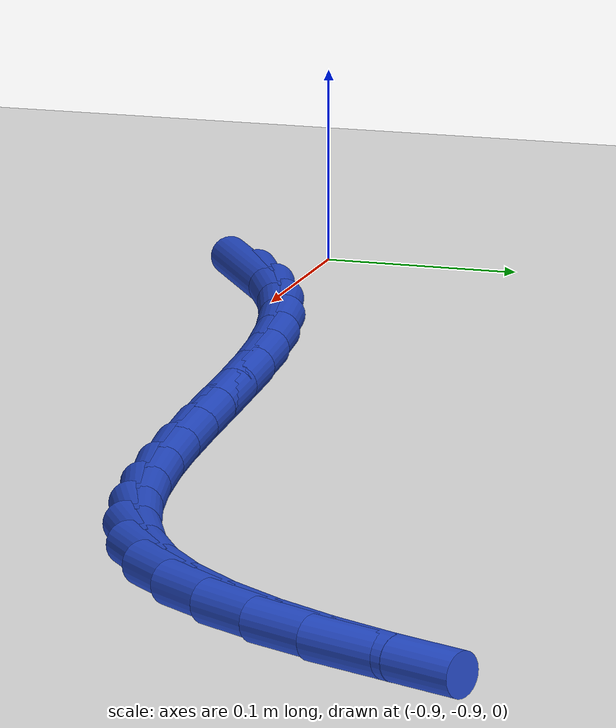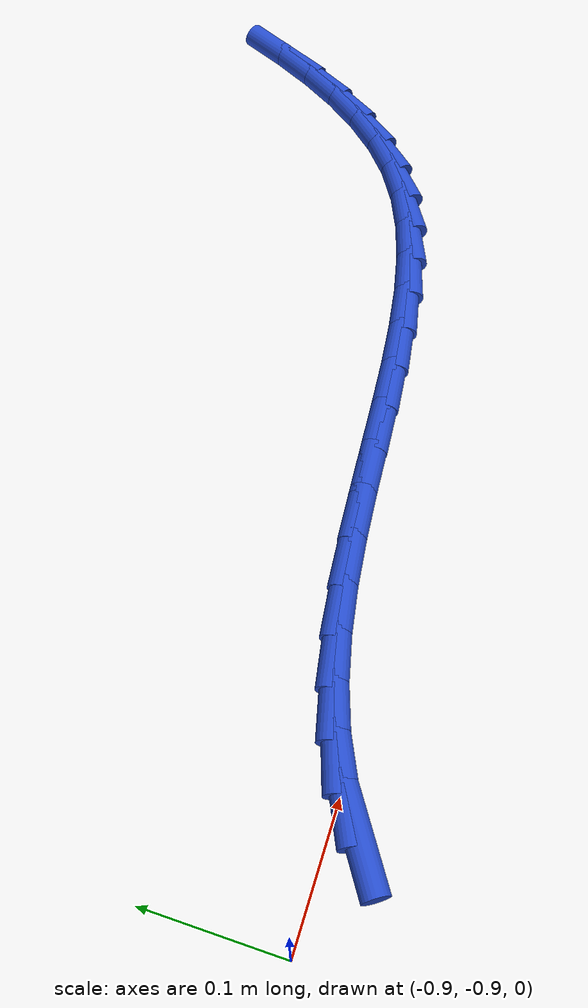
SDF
<sdf version="1.6">
 <world name="default">
  <model name="ground_plane">
   <static>1</static>
   <link name="link">
    <collision name="collision">
     <geometry><plane><normal>0 0 1</normal><size>100 100</size></plane></geometry>
     <surface><friction><ode><mu>100</mu><mu2>50</mu2></ode></friction></surface>
    </collision>
    <visual name="visual">
     <cast_shadows>0</cast_shadows>
     <geometry><plane><normal>0 0 1</normal><size>100 100</size></plane></geometry>
     <material>
      <script><uri>file://media/materials/scripts/gazebo.material</uri><name>Gazebo/WhiteGlow</name></script>
     </material>
    </visual>
   </link>
  </model>
  <model name="line">
   <link name="link_219">
    <pose>-0.8199545975330701 -0.9169338722129916 0.01 0 1.57 0.580667656799496</pose>
    <collision name="collision">
     <geometry><cylinder><radius>0.01</radius><length>0.08</length></cylinder></geometry>
    </collision>
    <visual name="visual">
     <material>
      <script><name>Gazebo/Blue</name><uri>file://media/materials/scripts/gazebo.material</uri></script>
     </material>
     <geometry><cylinder><radius>0.01</radius><length>0.08</length></cylinder></geometry>
    </visual>
   </link>
   <link name="link_220">
    <pose>-0.7932866746987662 -0.8994364316895248 0.01 0 1.57 0.44336963291658016</pose>
    <collision name="collision">
     <geometry><cylinder><radius>0.01</radius><length>0.08</length></cylinder></geometry>
    </collision>
    <visual name="visual">
     <material>
      <script><name>Gazebo/Blue</name><uri>file://media/materials/scripts/gazebo.material</uri></script>
     </material>
     <geometry><cylinder><radius>0.01</radius><length>0.08</length></cylinder></geometry>
    </visual>
   </link>
   <link name="link_221">
    <pose>-0.7640850175472584 -0.8855684612577612 0.01 0 1.57 0.3299310668705851</pose>
    <collision name="collision">
     <geometry><cylinder><radius>0.01</radius><length>0.08</length></cylinder></geometry>
    </collision>
    <visual name="visual">
     <material>
      <script><name>Gazebo/Blue</name><uri>file://media/materials/scripts/gazebo.material</uri></script>
     </material>
     <geometry><cylinder><radius>0.01</radius><length>0.08</length></cylinder></geometry>
    </visual>
   </link>
   <link name="link_222">
    <pose>-0.7327102203350103 -0.8748242294472135 0.01 0 1.57 0.240134395881027</pose>
    <collision name="collision">
     <geometry><cylinder><radius>0.01</radius><length>0.08</length></cylinder></geometry>
    </collision>
    <visual name="visual">
     <material>
      <script><name>Gazebo/Blue</name><uri>file://media/materials/scripts/gazebo.material</uri></script>
     </material>
     <geometry><cylinder><radius>0.01</radius><length>0.08</length></cylinder></geometry>
    </visual>
   </link>
   <link name="link_223">
    <pose>-0.6995228773184858 -0.8666980047873963 0.01 0 1.57 0.17190284746290246</pose>
    <collision name="collision">
     <geometry><cylinder><radius>0.01</radius><length>0.08</length></cylinder></geometry>
    </collision>
    <visual name="visual">
     <material>
      <script><name>Gazebo/Blue</name><uri>file://media/materials/scripts/gazebo.material</uri></script>
     </material>
     <geometry><cylinder><radius>0.01</radius><length>0.08</length></cylinder></geometry>
    </visual>
   </link>
   <link name="link_224">
    <pose>-0.6648835827541496 -0.8606840558078231 0.01 0 1.57 0.12273084630210436</pose>
    <collision name="collision">
     <geometry><cylinder><radius>0.01</radius><length>0.08</length></cylinder></geometry>
    </collision>
    <visual name="visual">
     <material>
      <script><name>Gazebo/Blue</name><uri>file://media/materials/scripts/gazebo.material</uri></script>
     </material>
     <geometry><cylinder><radius>0.01</radius><length>0.08</length></cylinder></geometry>
    </visual>
   </link>
   <link name="link_225">
    <pose>-0.6291529308984656 -0.856276651038008 0.01 0 1.57 0.09044003933684171</pose>
    <collision name="collision">
     <geometry><cylinder><radius>0.01</radius><length>0.08</length></cylinder></geometry>
    </collision>
    <visual name="visual">
     <material>
      <script><name>Gazebo/Blue</name><uri>file://media/materials/scripts/gazebo.material</uri></script>
     </material>
     <geometry><cylinder><radius>0.01</radius><length>0.08</length></cylinder></geometry>
    </visual>
   </link>
   <link name="link_226">
    <pose>-0.5926915160078979 -0.8529700590074647 0.01 0 1.57 0.07348660471732994</pose>
    <collision name="collision">
     <geometry><cylinder><radius>0.01</radius><length>0.08</length></cylinder></geometry>
    </collision>
    <visual name="visual">
     <material>
      <script><name>Gazebo/Blue</name><uri>file://media/materials/scripts/gazebo.material</uri></script>
     </material>
     <geometry><cylinder><radius>0.01</radius><length>0.08</length></cylinder></geometry>
    </visual>
   </link>
   <link name="link_227">
    <pose>-0.5558599323389111 -0.8502585482457072 0.01 0 1.57 0.0710549472121272</pose>
    <collision name="collision">
     <geometry><cylinder><radius>0.01</radius><length>0.08</length></cylinder></geometry>
    </collision>
    <visual name="visual">
     <material>
      <script><name>Gazebo/Blue</name><uri>file://media/materials/scripts/gazebo.material</uri></script>
     </material>
     <geometry><cylinder><radius>0.01</radius><length>0.08</length></cylinder></geometry>
    </visual>
   </link>
   <link name="link_228">
    <pose>-0.5190187741479689 -0.8476363872822492 0.01 0 1.57 0.08307857468106339</pose>
    <collision name="collision">
     <geometry><cylinder><radius>0.01</radius><length>0.08</length></cylinder></geometry>
    </collision>
    <visual name="visual">
     <material>
      <script><name>Gazebo/Blue</name><uri>file://media/materials/scripts/gazebo.material</uri></script>
     </material>
     <geometry><cylinder><radius>0.01</radius><length>0.08</length></cylinder></geometry>
    </visual>
   </link>
   <link name="link_229">
    <pose>-0.4825286356915351 -0.8445978446466049 0.01 0 1.57 0.11025036311671864</pose>
    <collision name="collision">
     <geometry><cylinder><radius>0.01</radius><length>0.08</length></cylinder></geometry>
    </collision>
    <visual name="visual">
     <material>
      <script><name>Gazebo/Blue</name><uri>file://media/materials/scripts/gazebo.material</uri></script>
     </material>
     <geometry><cylinder><radius>0.01</radius><length>0.08</length></cylinder></geometry>
    </visual>
   </link>
   <link name="link_230">
    <pose>-0.44675011122607555 -0.840637188868288 0.01 0 1.57 0.15403012646095887</pose>
    <collision name="collision">
     <geometry><cylinder><radius>0.01</radius><length>0.08</length></cylinder></geometry>
    </collision>
    <visual name="visual">
     <material>
      <script><name>Gazebo/Blue</name><uri>file://media/materials/scripts/gazebo.material</uri></script>
     </material>
     <geometry><cylinder><radius>0.01</radius><length>0.08</length></cylinder></geometry>
    </visual>
   </link>
   <link name="link_231">
    <pose>-0.4120437950080535 -0.8352486884768122 0.01 0 1.57 0.2166048697563265</pose>
    <collision name="collision">
     <geometry><cylinder><radius>0.01</radius><length>0.08</length></cylinder></geometry>
    </collision>
    <visual name="visual">
     <material>
      <script><name>Gazebo/Blue</name><uri>file://media/materials/scripts/gazebo.material</uri></script>
     </material>
     <geometry><cylinder><radius>0.01</radius><length>0.08</length></cylinder></geometry>
    </visual>
   </link>
   <link name="link_232">
    <pose>-0.3787702812939332 -0.8279266120016917 0.01 0 1.57 0.3006795053986466</pose>
    <collision name="collision">
     <geometry><cylinder><radius>0.01</radius><length>0.08</length></cylinder></geometry>
    </collision>
    <visual name="visual">
     <material>
      <script><name>Gazebo/Blue</name><uri>file://media/materials/scripts/gazebo.material</uri></script>
     </material>
     <geometry><cylinder><radius>0.01</radius><length>0.08</length></cylinder></geometry>
    </visual>
   </link>
   <link name="link_233">
    <pose>-0.34729016434017895 -0.8181652279724403 0.01 0 1.57 0.40886290355954746</pose>
    <collision name="collision">
     <geometry><cylinder><radius>0.01</radius><length>0.08</length></cylinder></geometry>
    </collision>
    <visual name="visual">
     <material>
      <script><name>Gazebo/Blue</name><uri>file://media/materials/scripts/gazebo.material</uri></script>
     </material>
     <geometry><cylinder><radius>0.01</radius><length>0.08</length></cylinder></geometry>
    </visual>
   </link>
   <link name="link_234">
    <pose>-0.31796403840325493 -0.805458804918572 0.01 0 1.57 0.5423061063530425</pose>
    <collision name="collision">
     <geometry><cylinder><radius>0.01</radius><length>0.08</length></cylinder></geometry>
    </collision>
    <visual name="visual">
     <material>
      <script><name>Gazebo/Blue</name><uri>file://media/materials/scripts/gazebo.material</uri></script>
     </material>
     <geometry><cylinder><radius>0.01</radius><length>0.08</length></cylinder></geometry>
    </visual>
   </link>
   <link name="link_235">
    <pose>-0.2911518119360251 -0.789302596606462 0.01 0 1.57 0.6887330615483602</pose>
    <collision name="collision">
     <geometry><cylinder><radius>0.01</radius><length>0.08</length></cylinder></geometry>
    </collision>
    <visual name="visual">
     <material>
      <script><name>Gazebo/Blue</name><uri>file://media/materials/scripts/gazebo.material</uri></script>
     </material>
     <geometry><cylinder><radius>0.01</radius><length>0.08</length></cylinder></geometry>
    </visual>
   </link>
   <link name="link_236">
    <pose>-0.2670344268323897 -0.7694489631385257 0.01 0 1.57 0.8197270552020646</pose>
    <collision name="collision">
     <geometry><cylinder><radius>0.01</radius><length>0.08</length></cylinder></geometry>
    </collision>
    <visual name="visual">
     <material>
      <script><name>Gazebo/Blue</name><uri>file://media/materials/scripts/gazebo.material</uri></script>
     </material>
     <geometry><cylinder><radius>0.01</radius><length>0.08</length></cylinder></geometry>
    </visual>
   </link>
   <link name="link_237">
    <pose>-0.2453756230708884 -0.7462496238297046 0.01 0 1.57 0.9293882442476099</pose>
    <collision name="collision">
     <geometry><cylinder><radius>0.01</radius><length>0.08</length></cylinder></geometry>
    </collision>
    <visual name="visual">
     <material>
      <script><name>Gazebo/Blue</name><uri>file://media/materials/scripts/gazebo.material</uri></script>
     </material>
     <geometry><cylinder><radius>0.01</radius><length>0.08</length></cylinder></geometry>
    </visual>
   </link>
   <link name="link_238">
    <pose>-0.2258798072070996 -0.7201415373774797 0.01 0 1.57 1.0181063961312142</pose>
    <collision name="collision">
     <geometry><cylinder><radius>0.01</radius><length>0.08</length></cylinder></geometry>
    </collision>
    <visual name="visual">
     <material>
      <script><name>Gazebo/Blue</name><uri>file://media/materials/scripts/gazebo.material</uri></script>
     </material>
     <geometry><cylinder><radius>0.01</radius><length>0.08</length></cylinder></geometry>
    </visual>
   </link>
   <link name="link_239">
    <pose>-0.20825138579660263 -0.6915616624793324 0.01 0 1.57 1.087761664113748</pose>
    <collision name="collision">
     <geometry><cylinder><radius>0.01</radius><length>0.08</length></cylinder></geometry>
    </collision>
    <visual name="visual">
     <material>
      <script><name>Gazebo/Blue</name><uri>file://media/materials/scripts/gazebo.material</uri></script>
     </material>
     <geometry><cylinder><radius>0.01</radius><length>0.08</length></cylinder></geometry>
    </visual>
   </link>
   <link name="link_240">
    <pose>-0.19219476539497665 -0.6609469578327448 0.01 0 1.57 1.1406155576849477</pose>
    <collision name="collision">
     <geometry><cylinder><radius>0.01</radius><length>0.08</length></cylinder></geometry>
    </collision>
    <visual name="visual">
     <material>
      <script><name>Gazebo/Blue</name><uri>file://media/materials/scripts/gazebo.material</uri></script>
     </material>
     <geometry><cylinder><radius>0.01</radius><length>0.08</length></cylinder></geometry>
    </visual>
   </link>
  </model>
 </world>
</sdf>
